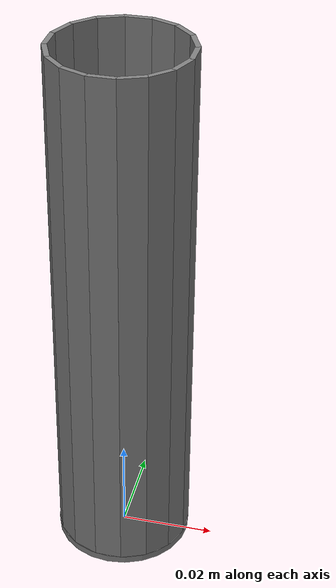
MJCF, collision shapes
<mujoco model="centrifuge_50ml">
  <compiler angle="radian" meshdir="../../assets/"/>

  <asset>
    <mesh name="centrifuge_50ml-visual_visual" file="container/centrifuge_50ml_vis/visual.obj" scale="0.001 0.001 0.001"/>
    <material name="centrifuge_50ml" rgba="1 1 1 0.2" />
  </asset>

  <worldbody>
    <body name="centrifuge_50ml">
      <geom size="0.0145 0.0008" pos="0 0 0.0008" type="cylinder" group="3"/>
      <geom type="mesh" contype="0" conaffinity="0" group="2" mesh="centrifuge_50ml-visual_visual" material="centrifuge_50ml"/>
      <frame>
        <geom size="0.00282881 0.000539432 0.0565" pos="0 0.013682 0.0581" type="box" group="3"/>
      </frame>
      <frame>
        <geom size="0.00282881 0.000539432 0.0565" pos="0.00523586 0.0126405 0.0581" quat="0.980785 0 0 -0.19509" type="box" group="3"/>
      </frame>
      <frame>
        <geom size="0.00282881 0.000539432 0.0565" pos="0.0096746 0.0096746 0.0581" quat="0.92388 0 0 -0.382683" type="box" group="3"/>
      </frame>
      <frame>
        <geom size="0.00282881 0.000539432 0.0565" pos="0.0126405 0.00523586 0.0581" quat="0.83147 0 0 -0.55557" type="box" group="3"/>
      </frame>
      <frame>
        <geom size="0.00282881 0.000539432 0.0565" pos="0.013682 0 0.0581" quat="0.707107 0 0 -0.707107" type="box" group="3"/>
      </frame>
      <frame>
        <geom size="0.00282881 0.000539432 0.0565" pos="0.0126405 -0.00523586 0.0581" quat="0.55557 0 0 -0.83147" type="box" group="3"/>
      </frame>
      <frame>
        <geom size="0.00282881 0.000539432 0.0565" pos="0.0096746 -0.0096746 0.0581" quat="0.382683 0 0 -0.92388" type="box" group="3"/>
      </frame>
      <frame>
        <geom size="0.00282881 0.000539432 0.0565" pos="0.00523586 -0.0126405 0.0581" quat="0.19509 0 0 -0.980785" type="box" group="3"/>
      </frame>
      <frame>
        <geom size="0.00282881 0.000539432 0.0565" pos="0 -0.013682 0.0581" quat="0 0 0 -1" type="box" group="3"/>
      </frame>
      <frame>
        <geom size="0.00282881 0.000539432 0.0565" pos="-0.00523586 -0.0126405 0.0581" quat="-0.19509 0 0 -0.980785" type="box" group="3"/>
      </frame>
      <frame>
        <geom size="0.00282881 0.000539432 0.0565" pos="-0.0096746 -0.0096746 0.0581" quat="-0.382683 0 0 -0.92388" type="box" group="3"/>
      </frame>
      <frame>
        <geom size="0.00282881 0.000539432 0.0565" pos="-0.0126405 -0.00523586 0.0581" quat="-0.55557 0 0 -0.83147" type="box" group="3"/>
      </frame>
      <frame>
        <geom size="0.00282881 0.000539432 0.0565" pos="-0.013682 0 0.0581" quat="-0.707107 0 0 -0.707107" type="box" group="3"/>
      </frame>
      <frame>
        <geom size="0.00282881 0.000539432 0.0565" pos="-0.0126405 0.00523586 0.0581" quat="-0.83147 0 0 -0.55557" type="box" group="3"/>
      </frame>
      <frame>
        <geom size="0.00282881 0.000539432 0.0565" pos="-0.0096746 0.0096746 0.0581" quat="-0.92388 0 0 -0.382683" type="box" group="3"/>
      </frame>
      <frame>
        <geom size="0.00282881 0.000539432 0.0565" pos="-0.00523586 0.0126405 0.0581" quat="-0.980785 0 0 -0.19509" type="box" group="3"/>
      </frame>
    </body>
  </worldbody>
</mujoco>
